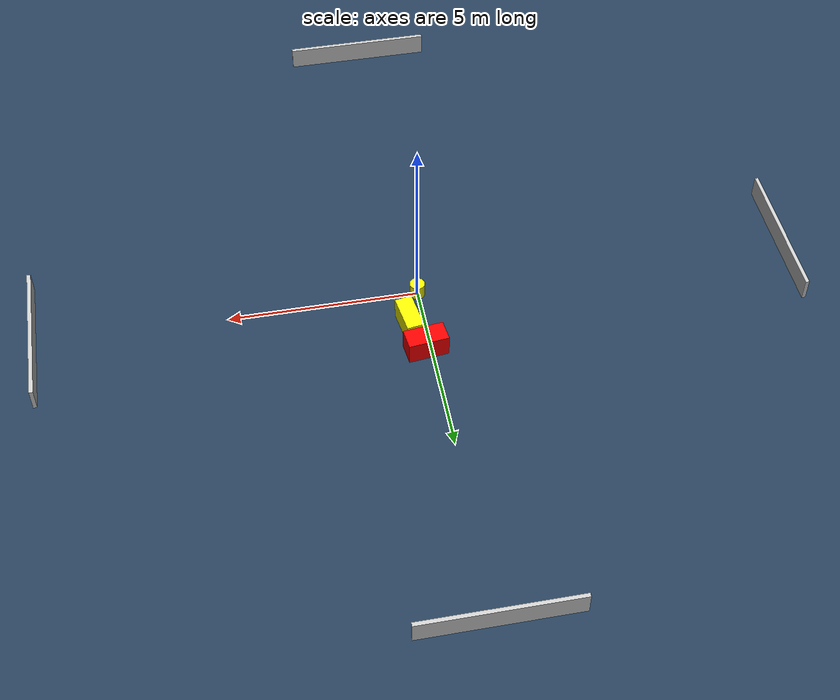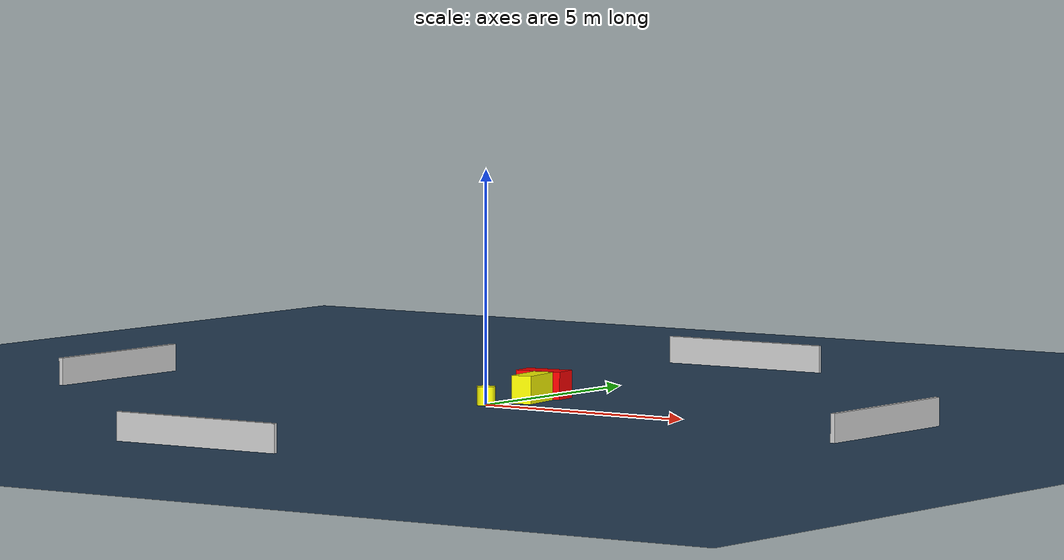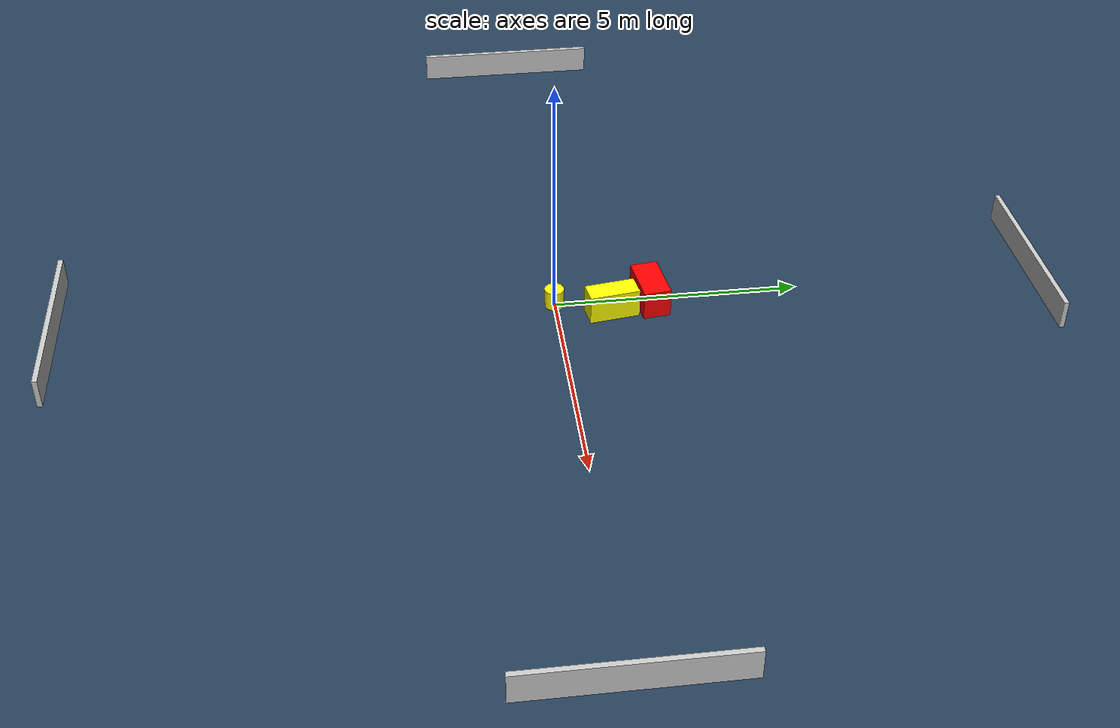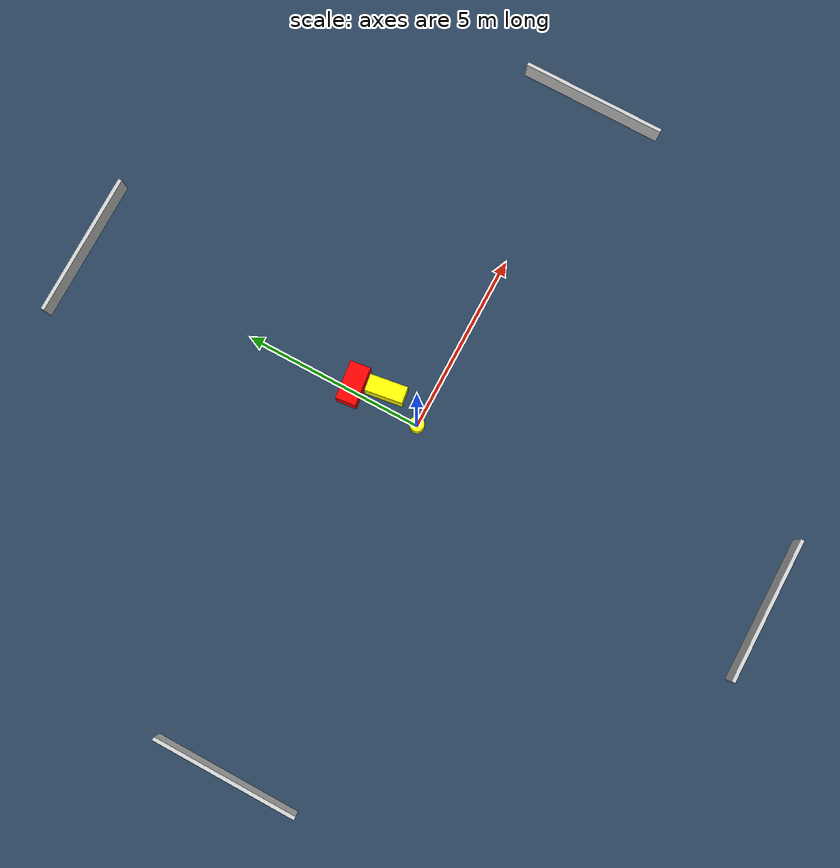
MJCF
<?xml version="1.0" ?>
<mujoco model="generated_environment">
  <option timestep="0.01" integrator="RK4" cone="elliptic"/>
  <default>
    <geom density="1"/>
  </default>
  <asset>
    <texture builtin="gradient" height="3072" name="skybox" rgb1="0.3 0.5 0.7" rgb2="0 0 0" type="skybox" width="512"/>
    <texture builtin="checker" height="300" name="groundplane" rgb1="0.2 0.3 0.4" rgb2="0.1 0.2 0.3" type="2d" width="300"/>
    <material name="groundplane" reflectance="0.2" texrepeat="5 5" texture="groundplane"/>
  </asset>
  <worldbody>
    <light dir="0 0 -1" directional="true" pos="0 0 1.5"/>
    <geom condim="3" friction="0.5 0.005 0.001" material="groundplane" name="floor" pos="0 0 0" size="0 0 0.05" type="plane"/>
    <body name="walls">
      <geom name="wall_1" condim="4" pos="-10.0 0.0 0.3" rgba="0.800000011920929 0.800000011920929 0.800000011920929 1.0" size="0.05 2.0 0.3" type="box"/>
      <geom name="wall_2" condim="4" pos="10.0 0.0 0.3" rgba="0.800000011920929 0.800000011920929 0.800000011920929 1.0" size="0.05 2.0 0.3" type="box"/>
      <geom name="wall_3" condim="4" pos="0.0 -10.0 0.3" rgba="0.800000011920929 0.800000011920929 0.800000011920929 1.0" size="2.0 0.05 0.3" type="box"/>
      <geom name="wall_4" condim="4" pos="0.0 10.0 0.3" rgba="0.800000011920929 0.800000011920929 0.800000011920929 1.0" size="2.0 0.05 0.3" type="box"/>
    </body>
    <body name="robot">
      <joint name="joint_x" type="slide" pos="0 0 0" axis="1 0 0"/>
      <joint name="joint_y" type="slide" pos="0 0 0" axis="0 1 0"/>
      <geom name="robot" type="cylinder" pos="0.0 0.0 0.2" size="0.2 0.2 0.0" mass="5.0" friction="1.0 0.005 0.0001" condim="4" rgba="1.0 1.0 0.0 1.0"/>
    </body>
    <body name="obstacle_1_movable">
      <geom name="obstacle_1_movable" condim="4" pos="0.4118922937063807 1.120832418504031 0.3" euler="0 0 188.31093085008249" friction="0.0 0.005 0.001" rgba="1.0 1.0 0.0 1.0" size="0.22811540998101834 0.5169166467101522 0.3" type="box" mass="0.1"/>
      <joint type="free"/>
    </body>
    <body name="obstacle_2_static">
      <geom name="obstacle_2_static" condim="4" pos="0.13576428663505705 1.9465819236472641 0.3" euler="0 0 186.57489044947422" friction="0.0 0.005 0.001" rgba="1.0 0.0 0.0 1.0" size="0.5289186383664719 0.2790049255125274 0.3" type="box"/>
    </body>
  </worldbody>
  <actuator>
    <motor name="actuator_x" joint="joint_x" gear="1" ctrlrange="-1 1"/>
    <motor name="actuator_y" joint="joint_y" gear="1" ctrlrange="-1 1"/>
  </actuator>
</mujoco>
